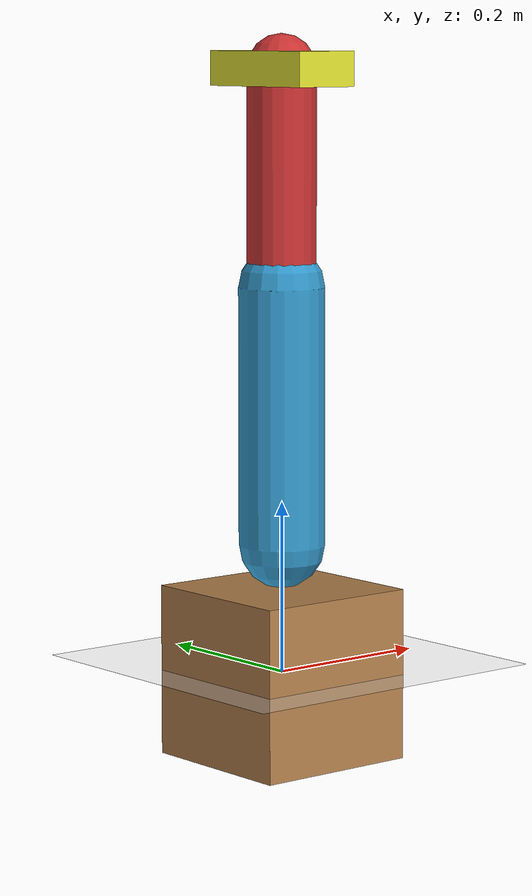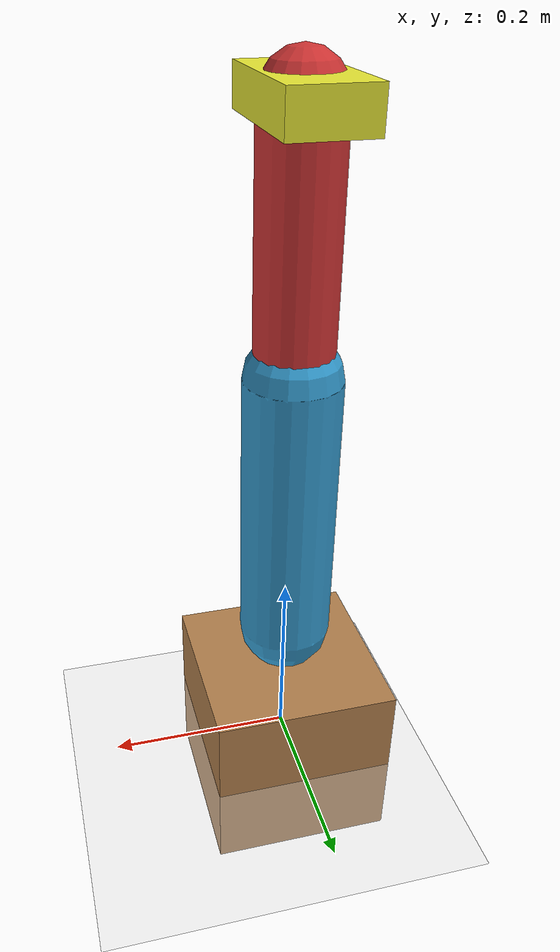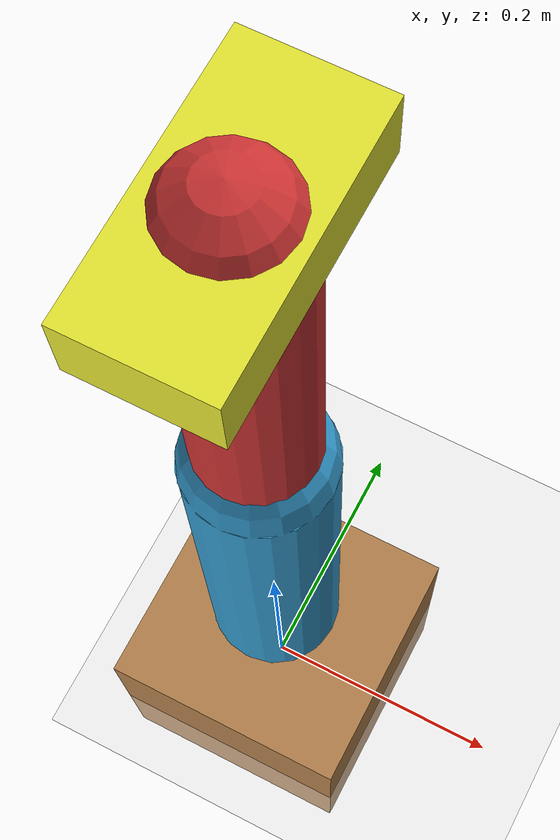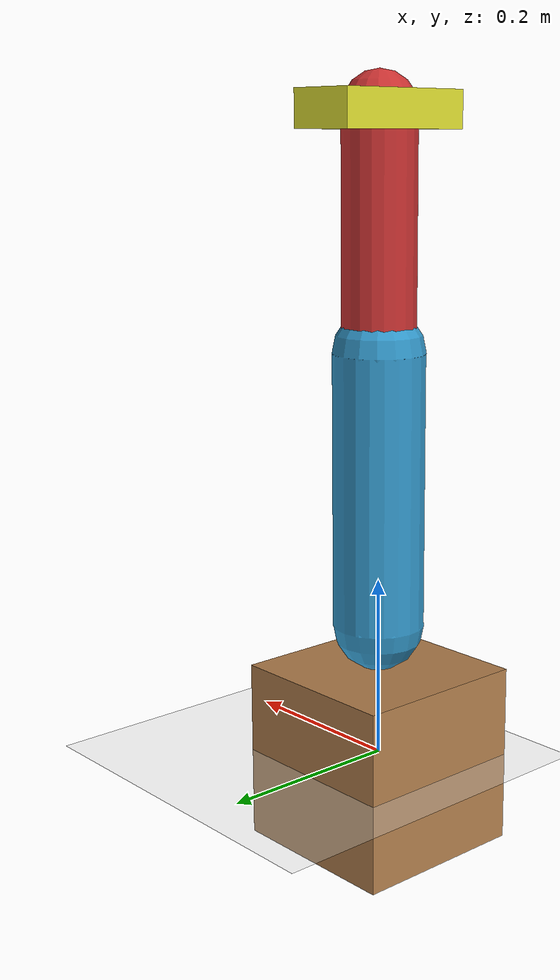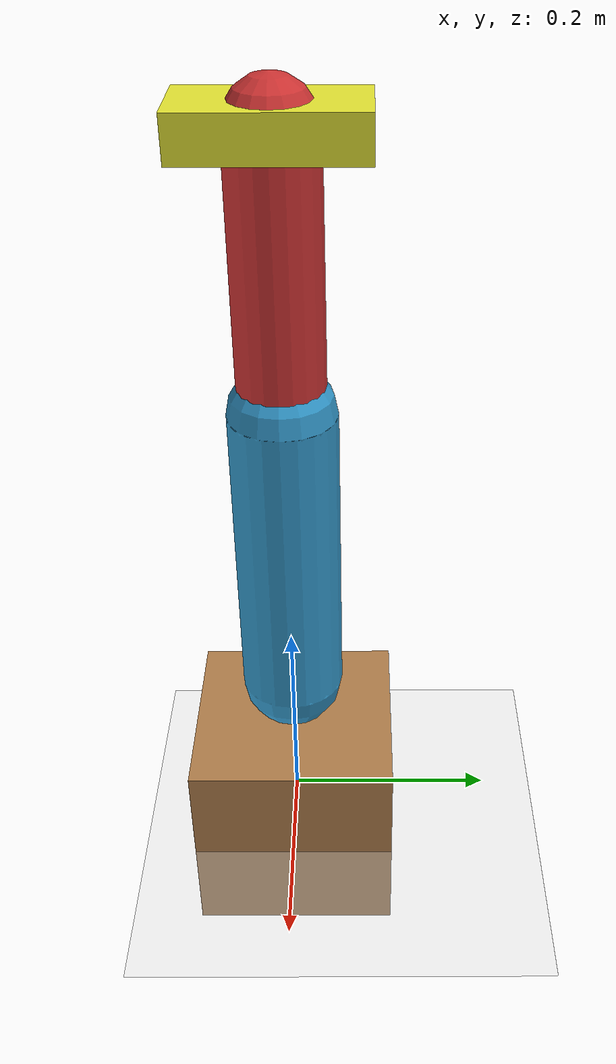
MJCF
<!-- arm_model.xml -->
<mujoco model="仿人机械臂">
  <option timestep="0.01"/>

  <worldbody>
    <!-- 世界坐标系中的基础光源 -->
    <light pos="0 0 2" dir="0 0 -1"/>
    <geom type="plane" size="1 1 0.1" rgba=".9 .9 .9 1"/>

    <!-- 躯干基座 -->
    <body name="torso" pos="0 0 0">
      <geom type="box" size=".1 .1 .1" rgba=".7 .5 .3 1"/>
      <joint type="free"/> <!-- 基座可以自由移动，方便观察 -->

      <!-- 上臂 -->
      <body name="upper_arm" pos="0 0 .15">
        <geom type="capsule" fromto="0 0 0 0 0 .3" size="0.05" rgba="0.2 0.6 0.8 1"/>
        <joint name="shoulder_pitch" type="hinge" pos="0 0 0" axis="1 0 0" range="-90 90"/>
        <joint name="shoulder_yaw" type="hinge" pos="0 0 0" axis="0 1 0" range="-45 45"/>

        <!-- 前臂 -->
        <body name="forearm" pos="0 0 .3">
          <geom type="capsule" fromto="0 0 0 0 0 .25" size="0.04" rgba="0.8 0.2 0.2 1"/>
          <joint name="elbow" type="hinge" pos="0 0 0" axis="1 0 0" range="-120 0"/>

          <!-- 简化手掌（作为一个整体） -->
          <body name="hand" pos="0 0 .25">
            <geom type="box" size=".04 .08 .02" rgba=".9 .9 .2 1"/>
            <joint name="wrist" type="hinge" pos="0 0 0" axis="0 1 0" range="-30 30"/>
          </body>
        </body>
      </body>
    </body>
  </worldbody>

  <actuator>
    <!-- 为每个关节定义位置伺服电机 -->
    <motor name="motor_shoulder_pitch" joint="shoulder_pitch" gear="50"/>
    <motor name="motor_shoulder_yaw" joint="shoulder_yaw" gear="30"/>
    <motor name="motor_elbow" joint="elbow" gear="40"/>
    <motor name="motor_wrist" joint="wrist" gear="10"/>
  </actuator>
</mujoco>
